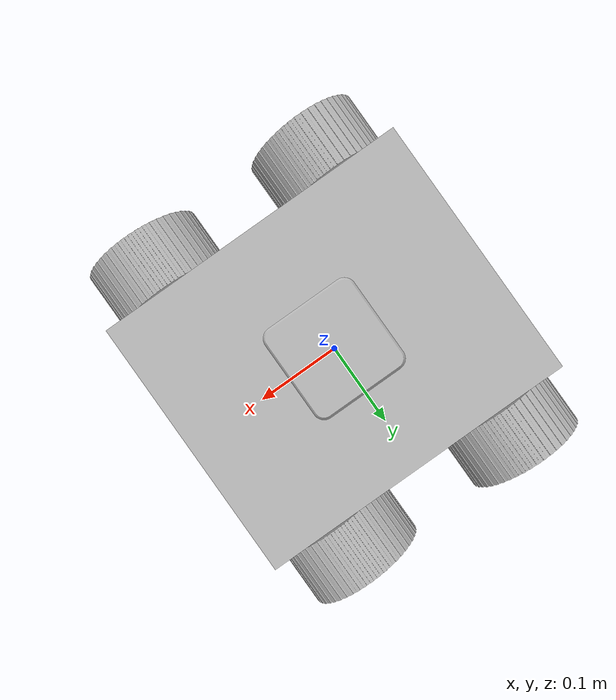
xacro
<?xml version="1.0" ?>
<robot name="navbot" xmlns:xacro="http://www.ros.org/wiki/xacro">

<xacro:include filename="$(find navbot_description)/urdf/materials.xacro" />
<xacro:include filename="$(find navbot_description)/urdf/navbot.trans" />
<xacro:include filename="$(find navbot_description)/urdf/navbot.gazebo" />
<xacro:include filename="$(find navbot_description)/urdf/navbot_gazebo_plugins.xacro" />
<link name="base_link">
  <inertial>
    <origin rpy="0 0 0" xyz="0.0003147036812539107 8.654508451147519e-05 0.10819103947899564"/>
    <mass value="12.261671363009004"/>
    <inertia ixx="0.081478" ixy="-0.0" ixz="9.1e-05" iyy="0.132969" iyz="2.5e-05" izz="0.169987"/>
  </inertial>
  <visual>
    <origin rpy="0 0 0" xyz="0 0 0"/>
    <geometry>
      <mesh filename="package://navbot_description/meshes/base_link.stl" scale="0.001 0.001 0.001"/>
    </geometry>
    <material name="silver"/>
  </visual>
  <collision>
    <origin rpy="0 0 0" xyz="0 0 0"/>
    <geometry>
      <mesh filename="package://navbot_description/meshes/base_link.stl" scale="0.001 0.001 0.001"/>
    </geometry>
  </collision>
</link>

<link name="back_right_1">
  <inertial>
    <origin rpy="0 0 0" xyz="-4.597357573521421e-07 -0.02052480177758853 3.5268927792847515e-07"/>
    <mass value="4.878358553104739"/>
    <inertia ixx="0.006717" ixy="-0.0" ixz="-0.0" iyy="0.010579" iyz="-0.0" izz="0.006717"/>
  </inertial>
  <visual>
    <origin rpy="0 0 0" xyz="0.099572 0.149882 -0.060076"/>
    <geometry>
      <mesh filename="package://navbot_description/meshes/back_right_1.stl" scale="0.001 0.001 0.001"/>
    </geometry>
    <material name="silver"/>
  </visual>
  <collision>
    <origin rpy="0 0 0" xyz="0.099572 0.149882 -0.060076"/>
    <geometry>
      <mesh filename="package://navbot_description/meshes/back_right_1.stl" scale="0.001 0.001 0.001"/>
    </geometry>
  </collision>
</link>

<link name="front_right_1">
  <inertial>
    <origin rpy="0 0 0" xyz="-4.5917696378516837e-07 -0.02052480177758842 3.532853243698453e-07"/>
    <mass value="4.878358553104739"/>
    <inertia ixx="0.006717" ixy="-0.0" ixz="-0.0" iyy="0.010579" iyz="0.0" izz="0.006717"/>
  </inertial>
  <visual>
    <origin rpy="0 0 0" xyz="-0.100428 0.149882 -0.060076"/>
    <geometry>
      <mesh filename="package://navbot_description/meshes/front_right_1.stl" scale="0.001 0.001 0.001"/>
    </geometry>
    <material name="silver"/>
  </visual>
  <collision>
    <origin rpy="0 0 0" xyz="-0.100428 0.149882 -0.060076"/>
    <geometry>
      <mesh filename="package://navbot_description/meshes/front_right_1.stl" scale="0.001 0.001 0.001"/>
    </geometry>
  </collision>
</link>

<link name="back_left_1">
  <inertial>
    <origin rpy="0 0 0" xyz="-4.591769638545573e-07 0.02052395350161601 3.5268927771336944e-07"/>
    <mass value="4.878358553104739"/>
    <inertia ixx="0.006717" ixy="0.0" ixz="0.0" iyy="0.010579" iyz="0.0" izz="0.006717"/>
  </inertial>
  <visual>
    <origin rpy="0 0 0" xyz="0.099572 -0.150118 -0.060076"/>
    <geometry>
      <mesh filename="package://navbot_description/meshes/back_left_1.stl" scale="0.001 0.001 0.001"/>
    </geometry>
    <material name="silver"/>
  </visual>
  <collision>
    <origin rpy="0 0 0" xyz="0.099572 -0.150118 -0.060076"/>
    <geometry>
      <mesh filename="package://navbot_description/meshes/back_left_1.stl" scale="0.001 0.001 0.001"/>
    </geometry>
  </collision>
</link>

<link name="front_left_1">
  <inertial>
    <origin rpy="0 0 0" xyz="-4.5917696392394625e-07 0.020523953501616038 3.5328532416167846e-07"/>
    <mass value="4.878358553104739"/>
    <inertia ixx="0.006717" ixy="0.0" ixz="0.0" iyy="0.010579" iyz="0.0" izz="0.006717"/>
  </inertial>
  <visual>
    <origin rpy="0 0 0" xyz="-0.100428 -0.150118 -0.060076"/>
    <geometry>
      <mesh filename="package://navbot_description/meshes/front_left_1.stl" scale="0.001 0.001 0.001"/>
    </geometry>
    <material name="silver"/>
  </visual>
  <collision>
    <origin rpy="0 0 0" xyz="-0.100428 -0.150118 -0.060076"/>
    <geometry>
      <mesh filename="package://navbot_description/meshes/front_left_1.stl" scale="0.001 0.001 0.001"/>
    </geometry>
  </collision>
</link>

<link name="laser_link_v1_1">
  <inertial>
    <origin rpy="0 0 0" xyz="0.0002638330985168125 -0.0007615524008374664 0.020624066504128902"/>
    <mass value="1.6657432797148926"/>
    <inertia ixx="0.001074" ixy="0.0" ixz="-4e-06" iyy="0.001074" iyz="1.2e-05" izz="0.001371"/>
  </inertial>
  <visual>
    <origin rpy="0 0 0" xyz="-0.0 -0.0 -0.18"/>
    <geometry>
      <mesh filename="package://navbot_description/meshes/laser_link_v1_1.stl" scale="0.001 0.001 0.001"/>
    </geometry>
    <material name="silver"/>
  </visual>
  <collision>
    <origin rpy="0 0 0" xyz="-0.0 -0.0 -0.18"/>
    <geometry>
      <mesh filename="package://navbot_description/meshes/laser_link_v1_1.stl" scale="0.001 0.001 0.001"/>
    </geometry>
  </collision>
</link>

<link name="camera_link_v1_1">
  <inertial>
    <origin rpy="0 0 0" xyz="-0.010094496944980769 1.27997814036277e-05 -0.14999905153125456"/>
    <mass value="0.18735731616487916"/>
    <inertia ixx="0.000194" ixy="-0.0" ixz="-0.0" iyy="4e-05" iyz="0.0" izz="0.000155"/>
  </inertial>
  <visual>
    <origin rpy="0 0 0" xyz="-0.150428 -0.000118 -0.280076"/>
    <geometry>
      <mesh filename="package://navbot_description/meshes/camera_link_v1_1.stl" scale="0.001 0.001 0.001"/>
    </geometry>
    <material name="silver"/>
  </visual>
  <collision>
    <origin rpy="0 0 0" xyz="-0.150428 -0.000118 -0.280076"/>
    <geometry>
      <mesh filename="package://navbot_description/meshes/camera_link_v1_1.stl" scale="0.001 0.001 0.001"/>
    </geometry>
  </collision>
</link>

<joint name="Rev1" type="continuous">
  <origin rpy="0 0 0" xyz="-0.099572 -0.149882 0.060076"/>
  <parent link="base_link"/>
  <child link="back_right_1"/>
  <axis xyz="0.0 1.0 -0.0"/>
</joint>

<joint name="Rev3" type="continuous">
  <origin rpy="0 0 0" xyz="0.100428 -0.149882 0.060076"/>
  <parent link="base_link"/>
  <child link="front_right_1"/>
  <axis xyz="0.0 1.0 -0.0"/>
</joint>

<joint name="Rev4" type="continuous">
  <origin rpy="0 0 0" xyz="-0.099572 0.150118 0.060076"/>
  <parent link="base_link"/>
  <child link="back_left_1"/>
  <axis xyz="-0.0 1.0 0.0"/>
</joint>

<joint name="Rev5" type="continuous">
  <origin rpy="0 0 0" xyz="0.100428 0.150118 0.060076"/>
  <parent link="base_link"/>
  <child link="front_left_1"/>
  <axis xyz="-0.0 1.0 0.0"/>
</joint>

<joint name="Rigid8" type="fixed">
  <origin rpy="0 0 0" xyz="0.0 0.0 0.19"/>
  <parent link="base_link"/>
  <child link="laser_link_v1_1"/>
</joint>

<joint name="Rigid9" type="fixed">
  <origin rpy="0 0 0" xyz="0.150428 0.000118 0.280076"/>
  <parent link="base_link"/>
  <child link="camera_link_v1_1"/>
</joint>

</robot>

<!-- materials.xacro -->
<robot name="navbot" xmlns:xacro="http://www.ros.org/wiki/xacro" >

<material name="silver">
  <color rgba="0.700 0.700 0.700 1.000"/>
</material>

</robot>

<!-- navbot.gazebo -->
<robot name="navbot" xmlns:xacro="http://www.ros.org/wiki/xacro" >

<xacro:property name="body_color" value="Gazebo/Silver" />

<gazebo>
  <plugin filename="libgazebo_ros_control.so" name="control"/>
</gazebo>
<gazebo reference="base_link">
  <material>${body_color}</material>
  <mu1>0.2</mu1>
  <mu2>0.2</mu2>
  <selfCollide>true</selfCollide>
  <gravity>true</gravity>
</gazebo>

<gazebo reference="back_right_1">
  <material>${body_color}</material>
  <mu1>0.2</mu1>
  <mu2>0.2</mu2>
  <selfCollide>true</selfCollide>
</gazebo>

<gazebo reference="front_right_1">
  <material>${body_color}</material>
  <mu1>0.2</mu1>
  <mu2>0.2</mu2>
  <selfCollide>true</selfCollide>
</gazebo>

<gazebo reference="back_left_1">
  <material>${body_color}</material>
  <mu1>0.2</mu1>
  <mu2>0.2</mu2>
  <selfCollide>true</selfCollide>
</gazebo>

<gazebo reference="front_left_1">
  <material>${body_color}</material>
  <mu1>0.2</mu1>
  <mu2>0.2</mu2>
  <selfCollide>true</selfCollide>
</gazebo>

<gazebo reference="laser_link_v1_1">
  <material>${body_color}</material>
  <mu1>0.2</mu1>
  <mu2>0.2</mu2>
  <selfCollide>true</selfCollide>
</gazebo>

<gazebo reference="camera_link_v1_1">
  <material>${body_color}</material>
  <mu1>0.2</mu1>
  <mu2>0.2</mu2>
  <selfCollide>true</selfCollide>
</gazebo>

</robot>
